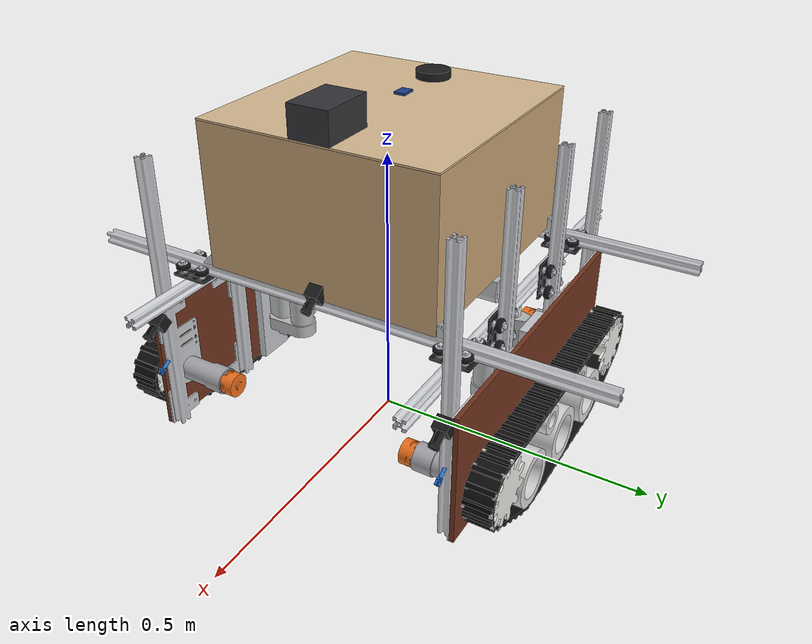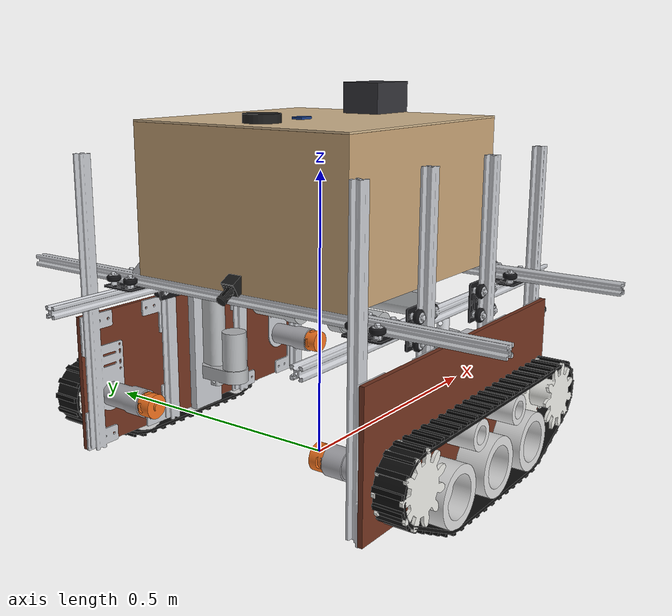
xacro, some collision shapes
<?xml version="1.0" ?>
<robot name="cropsentry" xmlns:xacro="http://www.ros.org/wiki/xacro">

<xacro:include filename="$(find cropsentry_description)/urdf/materials.xacro" />
<xacro:include filename="$(find cropsentry_description)/urdf/cropsentry.gazebo.xacro" />

<!-- meshes are in mm -->
<xacro:property name="mesh_scale" value="0.001 0.001 0.001" />

<!-- empty root link, KDL does not like inertia on the root -->
<link name="base_footprint"/>

<joint name="base_joint" type="fixed">
  <origin xyz="0 0 0" rpy="0 0 0"/>
  <parent link="base_footprint"/>
  <child link="base_link"/>
</joint>

<link name="base_link">
  <inertial>
    <origin xyz="-0.0028997388406951535 0.002000864602341355 0.39394531511524705" rpy="0 0 0"/>
    <mass value="9.078029323053778"/>
    <inertia ixx="0.324068" iyy="0.28302" izz="0.4143" ixy="-1e-06" iyz="0.000866" ixz="-8e-05"/>
  </inertial>
  <visual>
    <origin xyz="0 0 0" rpy="0 0 0"/>
    <geometry>
      <mesh filename="package://cropsentry_description/meshes/base_link__frame.stl" scale="${mesh_scale}"/>
    </geometry>
    <material name="aluminium"/>
  </visual>
  <collision>
    <origin xyz="0 0 0" rpy="0 0 0"/>
    <geometry>
      <mesh filename="package://cropsentry_description/meshes/base_link.stl" scale="${mesh_scale}"/>
    </geometry>
  </collision>
</link>
<link name="base_actuators_link">
  <inertial>
    <mass value="0.1"/>
    <inertia ixx="1e-04" iyy="1e-04" izz="1e-04" ixy="0" iyz="0" ixz="0"/>
  </inertial>
  <visual>
    <origin xyz="0 0 0" rpy="0 0 0"/>
    <geometry>
      <mesh filename="package://cropsentry_description/meshes/base_link__actuators.stl" scale="${mesh_scale}"/>
    </geometry>
    <material name="actuator_grey"/>
  </visual>
</link>

<joint name="base_actuators_joint" type="fixed">
  <parent link="base_link"/>
  <child link="base_actuators_link"/>
</joint>

<link name="box_link">
  <inertial>
    <mass value="0.1"/>
    <inertia ixx="1e-04" iyy="1e-04" izz="1e-04" ixy="0" iyz="0" ixz="0"/>
  </inertial>
  <visual>
    <origin xyz="-0.0028 0.0006 0.4586" rpy="0 0 0"/>
    <geometry>
      <box size="0.4296 0.4164 0.25"/>
    </geometry>
    <material name="oak_wood"/>
  </visual>
</link>

<joint name="box_joint" type="fixed">
  <parent link="base_link"/>
  <child link="box_link"/>
</joint>

<link name="box_lid_link">
  <inertial>
    <mass value="0.1"/>
    <inertia ixx="1e-04" iyy="1e-04" izz="1e-04" ixy="0" iyz="0" ixz="0"/>
  </inertial>
  <visual>
    <origin xyz="-0.0028 0.0006 0.5852" rpy="0 0 0"/>
    <geometry>
      <box size="0.4297 0.4164 0.003"/>
    </geometry>
    <material name="oak_wood_lid"/>
  </visual>
</link>

<joint name="box_lid_joint" type="fixed">
  <parent link="base_link"/>
  <child link="box_lid_link"/>
</joint>

<link name="camera_front_link_1">
  <inertial>
    <origin xyz="-0.02156696021487378 -3.8905486492504804e-07 0.014112258248214049" rpy="0 0 0"/>
    <mass value="0.01262884757300851"/>
    <inertia ixx="2e-06" iyy="2e-06" izz="2e-06" ixy="-0.0" iyz="-0.0" ixz="1e-06"/>
  </inertial>
  <visual>
    <origin xyz="-0.242705 -0.000996 -0.327144" rpy="0 0 0"/>
    <geometry>
      <mesh filename="package://cropsentry_description/meshes/camera_front_link_1.stl" scale="${mesh_scale}"/>
    </geometry>
    <material name="camera_black"/>
  </visual>
  <collision>
    <origin xyz="-0.242705 -0.000996 -0.327144" rpy="0 0 0"/>
    <geometry>
      <mesh filename="package://cropsentry_description/meshes/camera_front_link_1.stl" scale="${mesh_scale}"/>
    </geometry>
  </collision>
</link>

<link name="camera_rear_link_1">
  <inertial>
    <origin xyz="0.021904998449109037 -1.9220681589078928e-07 0.013582461130764778" rpy="0 0 0"/>
    <mass value="0.01262884757300851"/>
    <inertia ixx="2e-06" iyy="2e-06" izz="2e-06" ixy="-0.0" iyz="0.0" ixz="-1e-06"/>
  </inertial>
  <visual>
    <origin xyz="0.248889 -0.0005 -0.328849" rpy="0 0 0"/>
    <geometry>
      <mesh filename="package://cropsentry_description/meshes/camera_rear_link_1.stl" scale="${mesh_scale}"/>
    </geometry>
    <material name="camera_black"/>
  </visual>
  <collision>
    <origin xyz="0.248889 -0.0005 -0.328849" rpy="0 0 0"/>
    <geometry>
      <mesh filename="package://cropsentry_description/meshes/camera_rear_link_1.stl" scale="${mesh_scale}"/>
    </geometry>
  </collision>
</link>

<link name="left_side_rail_1">
  <inertial>
    <origin xyz="-0.0032508005913867736 -0.01092348710965313 -0.009961939764093874" rpy="0 0 0"/>
    <mass value="1.4128217094982853"/>
    <inertia ixx="0.003679" iyy="0.03178" izz="0.031741" ixy="2e-06" iyz="0.000156" ixz="-5e-06"/>
  </inertial>
  <visual>
    <origin xyz="0 -0.2416 -0.2986" rpy="0 0 0"/>
    <geometry>
      <mesh filename="package://cropsentry_description/meshes/left_side_rail__frame.stl" scale="${mesh_scale}"/>
    </geometry>
    <material name="aluminium"/>
  </visual>
  <collision>
    <origin xyz="0 -0.2416 -0.2986" rpy="0 0 0"/>
    <geometry>
      <mesh filename="package://cropsentry_description/meshes/left_side_rail_1.stl" scale="${mesh_scale}"/>
    </geometry>
  </collision>
</link>
<link name="left_gantry_link">
  <inertial>
    <mass value="0.1"/>
    <inertia ixx="1e-04" iyy="1e-04" izz="1e-04" ixy="0" iyz="0" ixz="0"/>
  </inertial>
  <visual>
    <origin xyz="0 -0.2416 -0.2986" rpy="0 0 0"/>
    <geometry>
      <mesh filename="package://cropsentry_description/meshes/left_side_rail__gantry.stl" scale="${mesh_scale}"/>
    </geometry>
    <material name="gantry_black"/>
  </visual>
</link>

<joint name="left_gantry_joint" type="fixed">
  <parent link="left_side_rail_1"/>
  <child link="left_gantry_link"/>
</joint>

<link name="left_rods_link">
  <inertial>
    <mass value="0.1"/>
    <inertia ixx="1e-04" iyy="1e-04" izz="1e-04" ixy="0" iyz="0" ixz="0"/>
  </inertial>
  <visual>
    <origin xyz="0 -0.2416 -0.2986" rpy="0 0 0"/>
    <geometry>
      <mesh filename="package://cropsentry_description/meshes/left_side_rail__rods.stl" scale="${mesh_scale}"/>
    </geometry>
    <material name="chrome"/>
  </visual>
</link>

<joint name="left_rods_joint" type="fixed">
  <parent link="left_side_rail_1"/>
  <child link="left_rods_link"/>
</joint>

<link name="right_side_rail_1">
  <inertial>
    <origin xyz="-0.003019650405096919 0.009579246964560778 -0.009961939764095207" rpy="0 0 0"/>
    <mass value="1.4128217094982853"/>
    <inertia ixx="0.003733" iyy="0.03178" izz="0.031795" ixy="3e-06" iyz="-0.000157" ixz="1.1e-05"/>
  </inertial>
  <visual>
    <origin xyz="0 0.2406 -0.2986" rpy="0 0 0"/>
    <geometry>
      <mesh filename="package://cropsentry_description/meshes/right_side_rail__frame.stl" scale="${mesh_scale}"/>
    </geometry>
    <material name="aluminium"/>
  </visual>
  <collision>
    <origin xyz="0 0.2406 -0.2986" rpy="0 0 0"/>
    <geometry>
      <mesh filename="package://cropsentry_description/meshes/right_side_rail_1.stl" scale="${mesh_scale}"/>
    </geometry>
  </collision>
</link>
<link name="right_gantry_link">
  <inertial>
    <mass value="0.1"/>
    <inertia ixx="1e-04" iyy="1e-04" izz="1e-04" ixy="0" iyz="0" ixz="0"/>
  </inertial>
  <visual>
    <origin xyz="0 0.2406 -0.2986" rpy="0 0 0"/>
    <geometry>
      <mesh filename="package://cropsentry_description/meshes/right_side_rail__gantry.stl" scale="${mesh_scale}"/>
    </geometry>
    <material name="gantry_black"/>
  </visual>
</link>

<joint name="right_gantry_joint" type="fixed">
  <parent link="right_side_rail_1"/>
  <child link="right_gantry_link"/>
</joint>

<link name="right_rods_link">
  <inertial>
    <mass value="0.1"/>
    <inertia ixx="1e-04" iyy="1e-04" izz="1e-04" ixy="0" iyz="0" ixz="0"/>
  </inertial>
  <visual>
    <origin xyz="0 0.2406 -0.2986" rpy="0 0 0"/>
    <geometry>
      <mesh filename="package://cropsentry_description/meshes/right_side_rail__rods.stl" scale="${mesh_scale}"/>
    </geometry>
    <material name="chrome"/>
  </visual>
</link>

<joint name="right_rods_joint" type="fixed">
  <parent link="right_side_rail_1"/>
  <child link="right_rods_link"/>
</joint>

<link name="left_side_module_1">
  <inertial>
    <origin xyz="-0.002841756386240688 -0.06449525605428841 0.1688535964038643" rpy="0 0 0"/>
    <mass value="9.085055226573818"/>
    <inertia ixx="0.120899" iyy="0.413131" izz="0.313186" ixy="-4.8e-05" iyz="-0.008334" ixz="4.1e-05"/>
  </inertial>
  <visual>
    <origin xyz="0 -0.3199 0" rpy="0 0 0"/>
    <geometry>
      <mesh filename="package://cropsentry_description/meshes/left_side_module__frame.stl" scale="${mesh_scale}"/>
    </geometry>
    <material name="aluminium"/>
  </visual>
  <collision>
    <origin xyz="0 -0.3199 0" rpy="0 0 0"/>
    <geometry>
      <mesh filename="package://cropsentry_description/meshes/left_side_module_1.stl" scale="${mesh_scale}"/>
    </geometry>
  </collision>
</link>
<link name="left_side_plate_link">
  <inertial>
    <mass value="0.1"/>
    <inertia ixx="1e-04" iyy="1e-04" izz="1e-04" ixy="0" iyz="0" ixz="0"/>
  </inertial>
  <visual>
    <origin xyz="-0.0032 -0.0376 0.1487" rpy="0 0 0"/>
    <geometry>
      <box size="0.5781 0.008 0.2339"/>
    </geometry>
    <material name="cherry_wood"/>
  </visual>
</link>

<joint name="left_side_plate_joint" type="fixed">
  <parent link="left_side_module_1"/>
  <child link="left_side_plate_link"/>
</joint>

<link name="left_sprayer_link">
  <inertial>
    <mass value="0.1"/>
    <inertia ixx="1e-04" iyy="1e-04" izz="1e-04" ixy="0" iyz="0" ixz="0"/>
  </inertial>
  <visual>
    <origin xyz="0 -0.3199 0" rpy="0 0 0"/>
    <geometry>
      <mesh filename="package://cropsentry_description/meshes/left_side_module__sprayer.stl" scale="${mesh_scale}"/>
    </geometry>
    <material name="water_blue"/>
  </visual>
</link>

<joint name="left_sprayer_joint" type="fixed">
  <parent link="left_side_module_1"/>
  <child link="left_sprayer_link"/>
</joint>

<link name="left_lift_actuator_link">
  <inertial>
    <mass value="0.1"/>
    <inertia ixx="1e-04" iyy="1e-04" izz="1e-04" ixy="0" iyz="0" ixz="0"/>
  </inertial>
  <visual>
    <origin xyz="0 -0.3199 0" rpy="0 0 0"/>
    <geometry>
      <mesh filename="package://cropsentry_description/meshes/left_side_module__actuators.stl" scale="${mesh_scale}"/>
    </geometry>
    <material name="actuator_grey"/>
  </visual>
</link>

<joint name="left_lift_actuator_joint" type="fixed">
  <parent link="left_side_module_1"/>
  <child link="left_lift_actuator_link"/>
</joint>

<link name="left_motors_link">
  <inertial>
    <mass value="0.1"/>
    <inertia ixx="1e-04" iyy="1e-04" izz="1e-04" ixy="0" iyz="0" ixz="0"/>
  </inertial>
  <visual>
    <origin xyz="0 -0.3199 0" rpy="0 0 0"/>
    <geometry>
      <mesh filename="package://cropsentry_description/meshes/left_side_module__motors.stl" scale="${mesh_scale}"/>
    </geometry>
    <material name="motor_grey"/>
  </visual>
</link>

<joint name="left_motors_joint" type="fixed">
  <parent link="left_side_module_1"/>
  <child link="left_motors_link"/>
</joint>

<link name="left_couplers_link">
  <inertial>
    <mass value="0.1"/>
    <inertia ixx="1e-04" iyy="1e-04" izz="1e-04" ixy="0" iyz="0" ixz="0"/>
  </inertial>
  <visual>
    <origin xyz="0 -0.3199 0" rpy="0 0 0"/>
    <geometry>
      <mesh filename="package://cropsentry_description/meshes/left_side_module__couplers.stl" scale="${mesh_scale}"/>
    </geometry>
    <material name="coupler_orange"/>
  </visual>
</link>

<joint name="left_couplers_joint" type="fixed">
  <parent link="left_side_module_1"/>
  <child link="left_couplers_link"/>
</joint>

<link name="right_side_module_1">
  <inertial>
    <origin xyz="-0.0027566210258044054 0.0642226774653018 0.1688535964038634" rpy="0 0 0"/>
    <mass value="9.085055226573818"/>
    <inertia ixx="0.12084" iyy="0.413159" izz="0.313155" ixy="1.5e-05" iyz="0.008322" ixz="5.6e-05"/>
  </inertial>
  <visual>
    <origin xyz="0 0.3199 0" rpy="0 0 0"/>
    <geometry>
      <mesh filename="package://cropsentry_description/meshes/right_side_module__frame.stl" scale="${mesh_scale}"/>
    </geometry>
    <material name="aluminium"/>
  </visual>
  <collision>
    <origin xyz="0 0.3199 0" rpy="0 0 0"/>
    <geometry>
      <mesh filename="package://cropsentry_description/meshes/right_side_module_1.stl" scale="${mesh_scale}"/>
    </geometry>
  </collision>
</link>
<link name="right_side_plate_link">
  <inertial>
    <mass value="0.1"/>
    <inertia ixx="1e-04" iyy="1e-04" izz="1e-04" ixy="0" iyz="0" ixz="0"/>
  </inertial>
  <visual>
    <origin xyz="-0.0032 0.0374 0.1487" rpy="0 0 0"/>
    <geometry>
      <box size="0.5781 0.008 0.2339"/>
    </geometry>
    <material name="cherry_wood"/>
  </visual>
</link>

<joint name="right_side_plate_joint" type="fixed">
  <parent link="right_side_module_1"/>
  <child link="right_side_plate_link"/>
</joint>

<link name="right_sprayer_link">
  <inertial>
    <mass value="0.1"/>
    <inertia ixx="1e-04" iyy="1e-04" izz="1e-04" ixy="0" iyz="0" ixz="0"/>
  </inertial>
  <visual>
    <origin xyz="0 0.3199 0" rpy="0 0 0"/>
    <geometry>
      <mesh filename="package://cropsentry_description/meshes/right_side_module__sprayer.stl" scale="${mesh_scale}"/>
    </geometry>
    <material name="water_blue"/>
  </visual>
</link>

<joint name="right_sprayer_joint" type="fixed">
  <parent link="right_side_module_1"/>
  <child link="right_sprayer_link"/>
</joint>

<link name="right_lift_actuator_link">
  <inertial>
    <mass value="0.1"/>
    <inertia ixx="1e-04" iyy="1e-04" izz="1e-04" ixy="0" iyz="0" ixz="0"/>
  </inertial>
  <visual>
    <origin xyz="0 0.3199 0" rpy="0 0 0"/>
    <geometry>
      <mesh filename="package://cropsentry_description/meshes/right_side_module__actuators.stl" scale="${mesh_scale}"/>
    </geometry>
    <material name="actuator_grey"/>
  </visual>
</link>

<joint name="right_lift_actuator_joint" type="fixed">
  <parent link="right_side_module_1"/>
  <child link="right_lift_actuator_link"/>
</joint>

<link name="right_motors_link">
  <inertial>
    <mass value="0.1"/>
    <inertia ixx="1e-04" iyy="1e-04" izz="1e-04" ixy="0" iyz="0" ixz="0"/>
  </inertial>
  <visual>
    <origin xyz="0 0.3199 0" rpy="0 0 0"/>
    <geometry>
      <mesh filename="package://cropsentry_description/meshes/right_side_module__motors.stl" scale="${mesh_scale}"/>
    </geometry>
    <material name="motor_grey"/>
  </visual>
</link>

<joint name="right_motors_joint" type="fixed">
  <parent link="right_side_module_1"/>
  <child link="right_motors_link"/>
</joint>

<link name="right_couplers_link">
  <inertial>
    <mass value="0.1"/>
    <inertia ixx="1e-04" iyy="1e-04" izz="1e-04" ixy="0" iyz="0" ixz="0"/>
  </inertial>
  <visual>
    <origin xyz="0 0.3199 0" rpy="0 0 0"/>
    <geometry>
      <mesh filename="package://cropsentry_description/meshes/right_side_module__couplers.stl" scale="${mesh_scale}"/>
    </geometry>
    <material name="coupler_orange"/>
  </visual>
</link>

<joint name="right_couplers_joint" type="fixed">
  <parent link="right_side_module_1"/>
  <child link="right_couplers_link"/>
</joint>

<link name="left_track_1">
  <inertial>
    <origin xyz="-0.006248661598620844 -6.661338147750939e-16 0.09493273360525734" rpy="0 0 0"/>
    <mass value="0.40112438725828753"/>
    <inertia ixx="0.001939" iyy="0.014875" izz="0.013099" ixy="0.0" iyz="-0.0" ixz="1.2e-05"/>
  </inertial>
  <visual>
    <origin xyz="0 -0.3199 0" rpy="0 0 0"/>
    <geometry>
      <mesh filename="package://cropsentry_description/meshes/left_track__belt.stl" scale="${mesh_scale}"/>
    </geometry>
    <material name="rubber_black"/>
  </visual>
  <visual>
    <origin xyz="0 -0.3199 0" rpy="0 0 0"/>
    <geometry>
      <mesh filename="package://cropsentry_description/meshes/left_track__treads.stl" scale="${mesh_scale}"/>
    </geometry>
    <material name="tread_black"/>
  </visual>
  <!-- flat box under the track, the belt mesh made the robot creep in Gazebo -->
  <collision>
    <origin xyz="-0.0065 0 0.086" rpy="0 0 0"/>
    <geometry>
      <box size="0.587 0.05 0.172"/>
    </geometry>
  </collision>
</link>

<link name="right_track_1">
  <inertial>
    <origin xyz="0.006248661598621838 3.547162563677375e-14 0.09493273360525625" rpy="0 0 0"/>
    <mass value="0.40112438725828753"/>
    <inertia ixx="0.001939" iyy="0.014875" izz="0.013099" ixy="0.0" iyz="-0.0" ixz="-1.2e-05"/>
  </inertial>
  <visual>
    <origin xyz="0 0.3199 0" rpy="0 0 0"/>
    <geometry>
      <mesh filename="package://cropsentry_description/meshes/right_track__belt.stl" scale="${mesh_scale}"/>
    </geometry>
    <material name="rubber_black"/>
  </visual>
  <visual>
    <origin xyz="0 0.3199 0" rpy="0 0 0"/>
    <geometry>
      <mesh filename="package://cropsentry_description/meshes/right_track__treads.stl" scale="${mesh_scale}"/>
    </geometry>
    <material name="tread_black"/>
  </visual>
  <!-- flat box under the track, the belt mesh made the robot creep in Gazebo -->
  <collision>
    <origin xyz="0.0065 0 0.086" rpy="0 0 0"/>
    <geometry>
      <box size="0.587 0.05 0.172"/>
    </geometry>
  </collision>
</link>

<link name="camera_sprayer_left_link_1">
  <inertial>
    <origin xyz="-0.022715497403238083 -1.9220681701792586e-07 0.012179634118250404" rpy="0 0 0"/>
    <mass value="0.01262884757300851"/>
    <inertia ixx="1e-06" iyy="2e-06" izz="2e-06" ixy="-0.0" iyz="-0.0" ixz="1e-06"/>
  </inertial>
  <visual>
    <origin xyz="-0.320595 -0.26632 -0.235227" rpy="0 0 0"/>
    <geometry>
      <mesh filename="package://cropsentry_description/meshes/camera_sprayer_left_link_1.stl" scale="${mesh_scale}"/>
    </geometry>
    <material name="camera_black"/>
  </visual>
  <collision>
    <origin xyz="-0.320595 -0.26632 -0.235227" rpy="0 0 0"/>
    <geometry>
      <mesh filename="package://cropsentry_description/meshes/camera_sprayer_left_link_1.stl" scale="${mesh_scale}"/>
    </geometry>
  </collision>
</link>

<link name="camera_sprayer_right_link_1">
  <inertial>
    <origin xyz="-0.022715497403238305 -1.922068169624147e-07 0.012179634118249183" rpy="0 0 0"/>
    <mass value="0.01262884757300851"/>
    <inertia ixx="1e-06" iyy="2e-06" izz="2e-06" ixy="-0.0" iyz="-0.0" ixz="1e-06"/>
  </inertial>
  <visual>
    <origin xyz="-0.320595 0.26548 -0.235227" rpy="0 0 0"/>
    <geometry>
      <mesh filename="package://cropsentry_description/meshes/camera_sprayer_right_link_1.stl" scale="${mesh_scale}"/>
    </geometry>
    <material name="camera_black"/>
  </visual>
  <collision>
    <origin xyz="-0.320595 0.26548 -0.235227" rpy="0 0 0"/>
    <geometry>
      <mesh filename="package://cropsentry_description/meshes/camera_sprayer_right_link_1.stl" scale="${mesh_scale}"/>
    </geometry>
  </collision>
</link>

<link name="lidar_link_1">
  <inertial>
    <origin xyz="-0.012059549430187222 0.0005320976527575695 -0.005614901098481284" rpy="0 0 0"/>
    <mass value="0.07308529026198554"/>
    <inertia ixx="3.2e-05" iyy="6.2e-05" izz="7.2e-05" ixy="-1e-06" iyz="-0.0" ixz="-7e-06"/>
  </inertial>
  <visual>
    <origin xyz="-0.177553 -0.000438 -0.617" rpy="0 0 0"/>
    <geometry>
      <mesh filename="package://cropsentry_description/meshes/lidar_link_1.stl" scale="${mesh_scale}"/>
    </geometry>
    <material name="lidar_dark"/>
  </visual>
  <!-- box instead of the lidar mesh, the mesh is too heavy for collision -->
  <collision>
    <origin xyz="-0.013 0 -0.0035" rpy="0 0 0"/>
    <geometry>
      <box size="0.097 0.071 0.053"/>
    </geometry>
  </collision>
</link>

<link name="front_left_sprocket_1">
  <inertial>
    <origin xyz="0 -7.771561172376096e-16 0" rpy="0 0 0"/>
    <mass value="0.17184803025851375"/>
    <inertia ixx="0.000122" iyy="0.000137" izz="0.000122" ixy="-0.0" iyz="0.0" ixz="0.0"/>
  </inertial>
  <visual>
    <origin xyz="-0.227011 -0.3199 -0.111374" rpy="0 0 0"/>
    <geometry>
      <mesh filename="package://cropsentry_description/meshes/front_left_sprocket_1.stl" scale="${mesh_scale}"/>
    </geometry>
    <material name="nylon_white"/>
  </visual>
  <collision>
    <origin xyz="-0.227011 -0.3199 -0.111374" rpy="0 0 0"/>
    <geometry>
      <mesh filename="package://cropsentry_description/meshes/front_left_sprocket_1.stl" scale="${mesh_scale}"/>
    </geometry>
  </collision>
</link>

<link name="rear_left_sprocket_1">
  <inertial>
    <origin xyz="0 -1.7208456881689926e-15 0" rpy="0 0 0"/>
    <mass value="0.17184803025851375"/>
    <inertia ixx="0.000122" iyy="0.000137" izz="0.000122" ixy="-0.0" iyz="0.0" ixz="0.0"/>
  </inertial>
  <visual>
    <origin xyz="0.233289 -0.3199 -0.111474" rpy="0 0 0"/>
    <geometry>
      <mesh filename="package://cropsentry_description/meshes/rear_left_sprocket_1.stl" scale="${mesh_scale}"/>
    </geometry>
    <material name="nylon_white"/>
  </visual>
  <collision>
    <origin xyz="0.233289 -0.3199 -0.111474" rpy="0 0 0"/>
    <geometry>
      <mesh filename="package://cropsentry_description/meshes/rear_left_sprocket_1.stl" scale="${mesh_scale}"/>
    </geometry>
  </collision>
</link>

<link name="front_right_sprocket_1">
  <inertial>
    <origin xyz="0 1.9262369477246466e-14 0" rpy="0 0 0"/>
    <mass value="0.17184803025851375"/>
    <inertia ixx="0.000122" iyy="0.000137" izz="0.000122" ixy="-0.0" iyz="-0.0" ixz="-0.0"/>
  </inertial>
  <visual>
    <origin xyz="-0.233289 0.3199 -0.111474" rpy="0 0 0"/>
    <geometry>
      <mesh filename="package://cropsentry_description/meshes/front_right_sprocket_1.stl" scale="${mesh_scale}"/>
    </geometry>
    <material name="nylon_white"/>
  </visual>
  <collision>
    <origin xyz="-0.233289 0.3199 -0.111474" rpy="0 0 0"/>
    <geometry>
      <mesh filename="package://cropsentry_description/meshes/front_right_sprocket_1.stl" scale="${mesh_scale}"/>
    </geometry>
  </collision>
</link>

<link name="rear_right_sprocket_1">
  <inertial>
    <origin xyz="0 5.473399511402022e-14 0" rpy="0 0 0"/>
    <mass value="0.17184803025851375"/>
    <inertia ixx="0.000122" iyy="0.000137" izz="0.000122" ixy="-0.0" iyz="-0.0" ixz="-0.0"/>
  </inertial>
  <visual>
    <origin xyz="0.227011 0.3199 -0.111374" rpy="0 0 0"/>
    <geometry>
      <mesh filename="package://cropsentry_description/meshes/rear_right_sprocket_1.stl" scale="${mesh_scale}"/>
    </geometry>
    <material name="nylon_white"/>
  </visual>
  <collision>
    <origin xyz="0.227011 0.3199 -0.111374" rpy="0 0 0"/>
    <geometry>
      <mesh filename="package://cropsentry_description/meshes/rear_right_sprocket_1.stl" scale="${mesh_scale}"/>
    </geometry>
  </collision>
</link>

<link name="front_left_road_wheel_1">
  <inertial>
    <origin xyz="0 -0.004177355519237036 0" rpy="0 0 0"/>
    <mass value="0.3123087999601298"/>
    <inertia ixx="0.000299" iyy="0.000472" izz="0.000301" ixy="0.0" iyz="-0.0" ixz="-0.0"/>
  </inertial>
  <visual>
    <origin xyz="-0.123669 -0.3199 -0.060034" rpy="0 0 0"/>
    <geometry>
      <mesh filename="package://cropsentry_description/meshes/front_left_road_wheel_1.stl" scale="${mesh_scale}"/>
    </geometry>
    <material name="wheel_white"/>
  </visual>
  <collision>
    <origin xyz="-0.123669 -0.3199 -0.060034" rpy="0 0 0"/>
    <geometry>
      <mesh filename="package://cropsentry_description/meshes/front_left_road_wheel_1.stl" scale="${mesh_scale}"/>
    </geometry>
  </collision>
</link>

<link name="middle_left_road_wheel_1">
  <inertial>
    <origin xyz="0 -0.004164305949009239 0" rpy="0 0 0"/>
    <mass value="0.3132874733976082"/>
    <inertia ixx="0.000302" iyy="0.000475" izz="0.000302" ixy="0.0" iyz="-0.0" ixz="-0.0"/>
  </inertial>
  <visual>
    <origin xyz="0.002923 -0.3199 -0.061329" rpy="0 0 0"/>
    <geometry>
      <mesh filename="package://cropsentry_description/meshes/middle_left_road_wheel_1.stl" scale="${mesh_scale}"/>
    </geometry>
    <material name="wheel_white"/>
  </visual>
  <collision>
    <origin xyz="0.002923 -0.3199 -0.061329" rpy="0 0 0"/>
    <geometry>
      <mesh filename="package://cropsentry_description/meshes/middle_left_road_wheel_1.stl" scale="${mesh_scale}"/>
    </geometry>
  </collision>
</link>

<link name="rear_left_road_wheel_1">
  <inertial>
    <origin xyz="0 -0.004183389697617779 0" rpy="0 0 0"/>
    <mass value="0.311858321485724"/>
    <inertia ixx="0.000298" iyy="0.000471" izz="0.000301" ixy="-0.0" iyz="-0.0" ixz="1e-06"/>
  </inertial>
  <visual>
    <origin xyz="0.128576 -0.3199 -0.061452" rpy="0 0 0"/>
    <geometry>
      <mesh filename="package://cropsentry_description/meshes/rear_left_road_wheel_1.stl" scale="${mesh_scale}"/>
    </geometry>
    <material name="wheel_white"/>
  </visual>
  <collision>
    <origin xyz="0.128576 -0.3199 -0.061452" rpy="0 0 0"/>
    <geometry>
      <mesh filename="package://cropsentry_description/meshes/rear_left_road_wheel_1.stl" scale="${mesh_scale}"/>
    </geometry>
  </collision>
</link>

<link name="front_right_road_wheel_1">
  <inertial>
    <origin xyz="0 0.004183389697643203 0" rpy="0 0 0"/>
    <mass value="0.311858321485724"/>
    <inertia ixx="0.000298" iyy="0.000471" izz="0.000301" ixy="-0.0" iyz="0.0" ixz="-1e-06"/>
  </inertial>
  <visual>
    <origin xyz="-0.128576 0.3199 -0.061452" rpy="0 0 0"/>
    <geometry>
      <mesh filename="package://cropsentry_description/meshes/front_right_road_wheel_1.stl" scale="${mesh_scale}"/>
    </geometry>
    <material name="wheel_white"/>
  </visual>
  <collision>
    <origin xyz="-0.128576 0.3199 -0.061452" rpy="0 0 0"/>
    <geometry>
      <mesh filename="package://cropsentry_description/meshes/front_right_road_wheel_1.stl" scale="${mesh_scale}"/>
    </geometry>
  </collision>
</link>

<link name="middle_right_road_wheel_1">
  <inertial>
    <origin xyz="0 0.004164305949044378 0" rpy="0 0 0"/>
    <mass value="0.3132874733976082"/>
    <inertia ixx="0.000302" iyy="0.000475" izz="0.000302" ixy="0.0" iyz="-0.0" ixz="-0.0"/>
  </inertial>
  <visual>
    <origin xyz="-0.002923 0.3199 -0.061329" rpy="0 0 0"/>
    <geometry>
      <mesh filename="package://cropsentry_description/meshes/middle_right_road_wheel_1.stl" scale="${mesh_scale}"/>
    </geometry>
    <material name="wheel_white"/>
  </visual>
  <collision>
    <origin xyz="-0.002923 0.3199 -0.061329" rpy="0 0 0"/>
    <geometry>
      <mesh filename="package://cropsentry_description/meshes/middle_right_road_wheel_1.stl" scale="${mesh_scale}"/>
    </geometry>
  </collision>
</link>

<link name="rear_right_road_wheel_1">
  <inertial>
    <origin xyz="0 0.0041773555192822776 0" rpy="0 0 0"/>
    <mass value="0.3123087999601298"/>
    <inertia ixx="0.000299" iyy="0.000472" izz="0.000301" ixy="0.0" iyz="0.0" ixz="0.0"/>
  </inertial>
  <visual>
    <origin xyz="0.123669 0.3199 -0.060034" rpy="0 0 0"/>
    <geometry>
      <mesh filename="package://cropsentry_description/meshes/rear_right_road_wheel_1.stl" scale="${mesh_scale}"/>
    </geometry>
    <material name="wheel_white"/>
  </visual>
  <collision>
    <origin xyz="0.123669 0.3199 -0.060034" rpy="0 0 0"/>
    <geometry>
      <mesh filename="package://cropsentry_description/meshes/rear_right_road_wheel_1.stl" scale="${mesh_scale}"/>
    </geometry>
  </collision>
</link>

<link name="front_left_roller_1">
  <inertial>
    <origin xyz="0 -0.0027551020408171367 0" rpy="0 0 0"/>
    <mass value="0.08697499261463347"/>
    <inertia ixx="3.4e-05" iyy="3.2e-05" izz="3.4e-05" ixy="0.0" iyz="-0.0" ixz="-0.0"/>
  </inertial>
  <visual>
    <origin xyz="-0.062099 -0.3199 -0.136329" rpy="0 0 0"/>
    <geometry>
      <mesh filename="package://cropsentry_description/meshes/front_left_roller_1.stl" scale="${mesh_scale}"/>
    </geometry>
    <material name="wheel_white"/>
  </visual>
  <collision>
    <origin xyz="-0.062099 -0.3199 -0.136329" rpy="0 0 0"/>
    <geometry>
      <mesh filename="package://cropsentry_description/meshes/front_left_roller_1.stl" scale="${mesh_scale}"/>
    </geometry>
  </collision>
</link>

<link name="rear_left_roller_1">
  <inertial>
    <origin xyz="0 -0.0027551020408171367 0" rpy="0 0 0"/>
    <mass value="0.08697499261463347"/>
    <inertia ixx="3.4e-05" iyy="3.2e-05" izz="3.4e-05" ixy="0.0" iyz="-0.0" ixz="-0.0"/>
  </inertial>
  <visual>
    <origin xyz="0.067944 -0.3199 -0.136329" rpy="0 0 0"/>
    <geometry>
      <mesh filename="package://cropsentry_description/meshes/rear_left_roller_1.stl" scale="${mesh_scale}"/>
    </geometry>
    <material name="wheel_white"/>
  </visual>
  <collision>
    <origin xyz="0.067944 -0.3199 -0.136329" rpy="0 0 0"/>
    <geometry>
      <mesh filename="package://cropsentry_description/meshes/rear_left_roller_1.stl" scale="${mesh_scale}"/>
    </geometry>
  </collision>
</link>

<link name="front_right_roller_1">
  <inertial>
    <origin xyz="0 0.002755102040846946 0" rpy="0 0 0"/>
    <mass value="0.08697499261463347"/>
    <inertia ixx="3.4e-05" iyy="3.2e-05" izz="3.4e-05" ixy="0.0" iyz="-0.0" ixz="-0.0"/>
  </inertial>
  <visual>
    <origin xyz="-0.067944 0.3199 -0.136329" rpy="0 0 0"/>
    <geometry>
      <mesh filename="package://cropsentry_description/meshes/front_right_roller_1.stl" scale="${mesh_scale}"/>
    </geometry>
    <material name="wheel_white"/>
  </visual>
  <collision>
    <origin xyz="-0.067944 0.3199 -0.136329" rpy="0 0 0"/>
    <geometry>
      <mesh filename="package://cropsentry_description/meshes/front_right_roller_1.stl" scale="${mesh_scale}"/>
    </geometry>
  </collision>
</link>

<link name="rear_right_roller_1">
  <inertial>
    <origin xyz="0 0.0027551020408573823 0" rpy="0 0 0"/>
    <mass value="0.08697499261463347"/>
    <inertia ixx="3.4e-05" iyy="3.2e-05" izz="3.4e-05" ixy="0.0" iyz="-0.0" ixz="-0.0"/>
  </inertial>
  <visual>
    <origin xyz="0.062099 0.3199 -0.136329" rpy="0 0 0"/>
    <geometry>
      <mesh filename="package://cropsentry_description/meshes/rear_right_roller_1.stl" scale="${mesh_scale}"/>
    </geometry>
    <material name="wheel_white"/>
  </visual>
  <collision>
    <origin xyz="0.062099 0.3199 -0.136329" rpy="0 0 0"/>
    <geometry>
      <mesh filename="package://cropsentry_description/meshes/rear_right_roller_1.stl" scale="${mesh_scale}"/>
    </geometry>
  </collision>
</link>

<joint name="camera_front_joint" type="fixed">
  <origin xyz="0.242705 0.000996 0.327144" rpy="0 0 0"/>
  <parent link="base_link"/>
  <child link="camera_front_link_1"/>
</joint>

<joint name="camera_rear_joint" type="fixed">
  <origin xyz="-0.248889 0.0005 0.328849" rpy="0 0 0"/>
  <parent link="base_link"/>
  <child link="camera_rear_link_1"/>
</joint>

<joint name="left_width_joint" type="prismatic">
  <origin xyz="0 0.2416 0.2986" rpy="0 0 0"/>
  <parent link="base_link"/>
  <child link="left_side_rail_1"/>
  <axis xyz="0 1 0"/>
  <limit lower="0" upper="0.09" effort="500" velocity="0.01"/>
</joint>

<joint name="right_width_joint" type="prismatic">
  <origin xyz="0 -0.2406 0.2986" rpy="0 0 0"/>
  <parent link="base_link"/>
  <child link="right_side_rail_1"/>
  <axis xyz="0 -1 0"/>
  <limit lower="0" upper="0.09" effort="500" velocity="0.01"/>
  <mimic joint="left_width_joint" multiplier="1" offset="0"/>
</joint>

<joint name="left_lift_joint" type="prismatic">
  <origin xyz="0 0.0783 -0.2986" rpy="0 0 0"/>
  <parent link="left_side_rail_1"/>
  <child link="left_side_module_1"/>
  <axis xyz="0 0 -1"/>
  <limit lower="0" upper="0.09" effort="500" velocity="0.01"/>
</joint>

<joint name="right_lift_joint" type="prismatic">
  <origin xyz="0 -0.0793 -0.2986" rpy="0 0 0"/>
  <parent link="right_side_rail_1"/>
  <child link="right_side_module_1"/>
  <axis xyz="0 0 -1"/>
  <limit lower="0" upper="0.09" effort="500" velocity="0.01"/>
  <mimic joint="left_lift_joint" multiplier="1" offset="0"/>
</joint>

<joint name="left_track_joint" type="fixed">
  <origin xyz="0 0 0" rpy="0 0 0"/>
  <parent link="left_side_module_1"/>
  <child link="left_track_1"/>
</joint>

<joint name="right_track_joint" type="fixed">
  <origin xyz="0 0 0" rpy="0 0 0"/>
  <parent link="right_side_module_1"/>
  <child link="right_track_1"/>
</joint>

<joint name="camera_sprayer_left_joint" type="fixed">
  <origin xyz="0.320595 -0.05358 0.235227" rpy="0 0 0"/>
  <parent link="left_side_module_1"/>
  <child link="camera_sprayer_left_link_1"/>
</joint>

<joint name="camera_sprayer_right_joint" type="fixed">
  <origin xyz="0.320595 0.05442 0.235227" rpy="0 0 0"/>
  <parent link="right_side_module_1"/>
  <child link="camera_sprayer_right_link_1"/>
</joint>

<joint name="lidar_joint" type="fixed">
  <origin xyz="0.177553 0.000438 0.617" rpy="0 0 0"/>
  <parent link="base_link"/>
  <child link="lidar_link_1"/>
</joint>

<!-- BNO055 on top of the lid, far from the motors so the magnetometer gives a usable heading -->
<link name="imu_link">
  <inertial>
    <mass value="0.01"/>
    <inertia ixx="1e-06" iyy="1e-06" izz="1e-06" ixy="0" iyz="0" ixz="0"/>
  </inertial>
  <visual>
    <origin xyz="0 0 0.002" rpy="0 0 0"/>
    <geometry>
      <box size="0.027 0.02 0.004"/>
    </geometry>
    <material name="pcb_blue"/>
  </visual>
</link>

<joint name="imu_joint" type="fixed">
  <origin xyz="-0.05 0 0.5867" rpy="0 0 0"/>
  <parent link="base_link"/>
  <child link="imu_link"/>
</joint>

<!-- NEO-M8N GPS puck at the back of the lid -->
<link name="gps_link">
  <inertial>
    <mass value="0.05"/>
    <inertia ixx="1e-05" iyy="1e-05" izz="1e-05" ixy="0" iyz="0" ixz="0"/>
  </inertial>
  <visual>
    <origin xyz="0 0 0.007" rpy="0 0 0"/>
    <geometry>
      <cylinder radius="0.03" length="0.014"/>
    </geometry>
    <material name="gps_black"/>
  </visual>
</link>

<joint name="gps_joint" type="fixed">
  <origin xyz="-0.15 0 0.5867" rpy="0 0 0"/>
  <parent link="base_link"/>
  <child link="gps_link"/>
</joint>

<joint name="front_left_sprocket_joint" type="continuous">
  <origin xyz="0.227011 0 0.111374" rpy="0 0 0"/>
  <parent link="left_side_module_1"/>
  <child link="front_left_sprocket_1"/>
  <axis xyz="0 1 0"/>
  <dynamics damping="0.02"/>
</joint>

<joint name="rear_left_sprocket_joint" type="continuous">
  <origin xyz="-0.233289 0 0.111474" rpy="0 0 0"/>
  <parent link="left_side_module_1"/>
  <child link="rear_left_sprocket_1"/>
  <axis xyz="0 1 0"/>
  <dynamics damping="0.02"/>
  <mimic joint="front_left_sprocket_joint" multiplier="1.0" offset="0"/>
</joint>

<joint name="front_right_sprocket_joint" type="continuous">
  <origin xyz="0.233289 0 0.111474" rpy="0 0 0"/>
  <parent link="right_side_module_1"/>
  <child link="front_right_sprocket_1"/>
  <axis xyz="0 1 0"/>
  <dynamics damping="0.02"/>
</joint>

<joint name="rear_right_sprocket_joint" type="continuous">
  <origin xyz="-0.227011 0 0.111374" rpy="0 0 0"/>
  <parent link="right_side_module_1"/>
  <child link="rear_right_sprocket_1"/>
  <axis xyz="0 1 0"/>
  <dynamics damping="0.02"/>
  <mimic joint="front_right_sprocket_joint" multiplier="1.0" offset="0"/>
</joint>

<joint name="front_left_road_wheel_joint" type="continuous">
  <origin xyz="0.123669 0 0.060034" rpy="0 0 0"/>
  <parent link="left_side_module_1"/>
  <child link="front_left_road_wheel_1"/>
  <axis xyz="0 1 0"/>
  <dynamics damping="0.02"/>
  <mimic joint="front_left_sprocket_joint" multiplier="1.17" offset="0"/>
</joint>

<joint name="middle_left_road_wheel_joint" type="continuous">
  <origin xyz="-0.002923 0 0.061329" rpy="0 0 0"/>
  <parent link="left_side_module_1"/>
  <child link="middle_left_road_wheel_1"/>
  <axis xyz="0 1 0"/>
  <dynamics damping="0.02"/>
  <mimic joint="front_left_sprocket_joint" multiplier="1.17" offset="0"/>
</joint>

<joint name="rear_left_road_wheel_joint" type="continuous">
  <origin xyz="-0.128576 0 0.061452" rpy="0 0 0"/>
  <parent link="left_side_module_1"/>
  <child link="rear_left_road_wheel_1"/>
  <axis xyz="0 1 0"/>
  <dynamics damping="0.02"/>
  <mimic joint="front_left_sprocket_joint" multiplier="1.17" offset="0"/>
</joint>

<joint name="front_right_road_wheel_joint" type="continuous">
  <origin xyz="0.128576 0 0.061452" rpy="0 0 0"/>
  <parent link="right_side_module_1"/>
  <child link="front_right_road_wheel_1"/>
  <axis xyz="0 1 0"/>
  <dynamics damping="0.02"/>
  <mimic joint="front_right_sprocket_joint" multiplier="1.17" offset="0"/>
</joint>

<joint name="middle_right_road_wheel_joint" type="continuous">
  <origin xyz="0.002923 0 0.061329" rpy="0 0 0"/>
  <parent link="right_side_module_1"/>
  <child link="middle_right_road_wheel_1"/>
  <axis xyz="0 1 0"/>
  <dynamics damping="0.02"/>
  <mimic joint="front_right_sprocket_joint" multiplier="1.17" offset="0"/>
</joint>

<joint name="rear_right_road_wheel_joint" type="continuous">
  <origin xyz="-0.123669 0 0.060034" rpy="0 0 0"/>
  <parent link="right_side_module_1"/>
  <child link="rear_right_road_wheel_1"/>
  <axis xyz="0 1 0"/>
  <dynamics damping="0.02"/>
  <mimic joint="front_right_sprocket_joint" multiplier="1.17" offset="0"/>
</joint>

<joint name="front_left_roller_joint" type="continuous">
  <origin xyz="0.062099 0 0.136329" rpy="0 0 0"/>
  <parent link="left_side_module_1"/>
  <child link="front_left_roller_1"/>
  <axis xyz="0 1 0"/>
  <dynamics damping="0.02"/>
  <mimic joint="front_left_sprocket_joint" multiplier="2.34" offset="0"/>
</joint>

<joint name="rear_left_roller_joint" type="continuous">
  <origin xyz="-0.067944 0 0.136329" rpy="0 0 0"/>
  <parent link="left_side_module_1"/>
  <child link="rear_left_roller_1"/>
  <axis xyz="0 1 0"/>
  <dynamics damping="0.02"/>
  <mimic joint="front_left_sprocket_joint" multiplier="2.34" offset="0"/>
</joint>

<joint name="front_right_roller_joint" type="continuous">
  <origin xyz="0.067944 0 0.136329" rpy="0 0 0"/>
  <parent link="right_side_module_1"/>
  <child link="front_right_roller_1"/>
  <axis xyz="0 1 0"/>
  <dynamics damping="0.02"/>
  <mimic joint="front_right_sprocket_joint" multiplier="2.34" offset="0"/>
</joint>

<joint name="rear_right_roller_joint" type="continuous">
  <origin xyz="-0.062099 0 0.136329" rpy="0 0 0"/>
  <parent link="right_side_module_1"/>
  <child link="rear_right_roller_1"/>
  <axis xyz="0 1 0"/>
  <dynamics damping="0.02"/>
  <mimic joint="front_right_sprocket_joint" multiplier="2.34" offset="0"/>
</joint>

</robot>

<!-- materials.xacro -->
<robot xmlns:xacro="http://www.ros.org/wiki/xacro">

<!-- colours taken from the Fusion appearances, cropsentry.gazebo.xacro uses the same values -->
<xacro:property name="aluminium_rgba" value="0.78 0.79 0.81 1"/>
<xacro:property name="gantry_rgba" value="0.08 0.08 0.09 1"/>
<xacro:property name="chrome_rgba" value="0.86 0.87 0.89 1"/>
<xacro:property name="actuator_rgba" value="0.72 0.73 0.74 1"/>
<xacro:property name="oak_rgba" value="0.78 0.64 0.46 1"/>
<xacro:property name="oak_lid_rgba" value="0.84 0.73 0.57 1"/>
<xacro:property name="cherry_rgba" value="0.45 0.2 0.12 1"/>
<xacro:property name="motor_rgba" value="0.66 0.66 0.68 1"/>
<xacro:property name="coupler_rgba" value="0.95 0.45 0.12 1"/>
<xacro:property name="water_rgba" value="0.15 0.45 0.85 1"/>
<xacro:property name="rubber_rgba" value="0.06 0.06 0.06 1"/>
<xacro:property name="tread_rgba" value="0.03 0.03 0.03 1"/>
<xacro:property name="nylon_rgba" value="0.93 0.93 0.91 1"/>
<xacro:property name="wheel_rgba" value="0.86 0.86 0.86 1"/>
<xacro:property name="camera_rgba" value="0.1 0.1 0.1 1"/>
<xacro:property name="lidar_rgba" value="0.2 0.2 0.22 1"/>
<xacro:property name="pcb_rgba" value="0.1 0.25 0.55 1"/>
<xacro:property name="gps_rgba" value="0.12 0.12 0.12 1"/>

<material name="aluminium"><color rgba="${aluminium_rgba}"/></material>
<material name="gantry_black"><color rgba="${gantry_rgba}"/></material>
<material name="chrome"><color rgba="${chrome_rgba}"/></material>
<material name="actuator_grey"><color rgba="${actuator_rgba}"/></material>
<material name="oak_wood"><color rgba="${oak_rgba}"/></material>
<material name="oak_wood_lid"><color rgba="${oak_lid_rgba}"/></material>
<material name="cherry_wood"><color rgba="${cherry_rgba}"/></material>
<material name="motor_grey"><color rgba="${motor_rgba}"/></material>
<material name="coupler_orange"><color rgba="${coupler_rgba}"/></material>
<material name="water_blue"><color rgba="${water_rgba}"/></material>
<material name="rubber_black"><color rgba="${rubber_rgba}"/></material>
<material name="tread_black"><color rgba="${tread_rgba}"/></material>
<material name="nylon_white"><color rgba="${nylon_rgba}"/></material>
<material name="wheel_white"><color rgba="${wheel_rgba}"/></material>
<material name="camera_black"><color rgba="${camera_rgba}"/></material>
<material name="lidar_dark"><color rgba="${lidar_rgba}"/></material>
<material name="pcb_blue"><color rgba="${pcb_rgba}"/></material>
<material name="gps_black"><color rgba="${gps_rgba}"/></material>

</robot>
